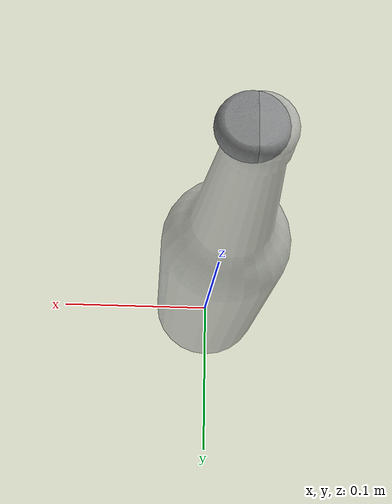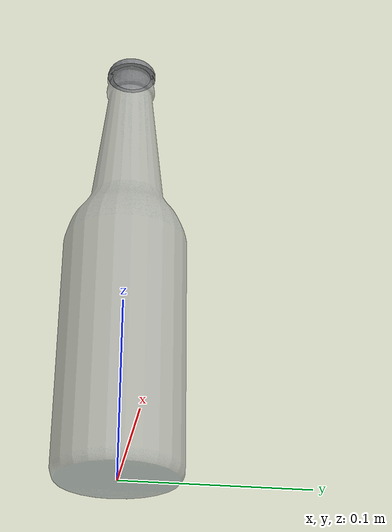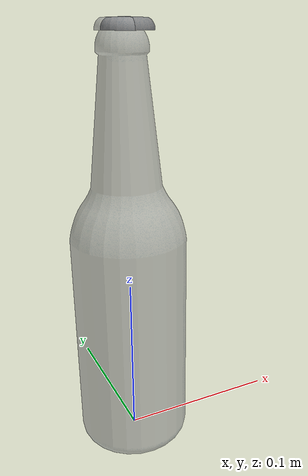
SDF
<?xml version='1.0'?>
<sdf version='1.6'>
  <model name='bottle_beer'>
    <link name='link_2'>

      <inertial>
          <pose frame=''>0 0 0.123373 0 -0 0</pose>
        <mass>0.5</mass>
        <inertia>
          <ixx>0.00268246596629</ixx>
          <ixy>0.0</ixy>
          <ixz>0.0</ixz>
          <iyy>0.00268246596629</iyy>
          <iyz>0.0</iyz>
          <izz>0.00029129955625</izz>
        </inertia>
      </inertial>

        <visual name='visual_1'>
          <geometry>
          <mesh>
            <uri>model://bottle_beer/meshes/beer_bottle.dae</uri>
            <scale>1 1 1</scale>
          </mesh>
        </geometry>
        <cast_shadows>1</cast_shadows>
        <transparency>0.4</transparency>
      </visual>
      <collision name='collision_1'>
        <laser_retro>0</laser_retro>
        <max_contacts>10</max_contacts>
        <geometry>
          <mesh>
            <uri>model://bottle_beer/meshes/beer_bottle.dae</uri>
            <scale>1 1 1</scale>
          </mesh>
        </geometry>
        </collision>

        <visual name='visual_2'>
         <geometry>
          <mesh>
            <uri>model://bottle_beer/meshes/cap.dae</uri>
            <scale>1 1 1</scale>
          </mesh>
        </geometry>

        <cast_shadows>1</cast_shadows>
        <transparency>0</transparency>
      </visual>
      <collision name='collision_2'>
        <laser_retro>0</laser_retro>
        <max_contacts>10</max_contacts>
       <geometry>
          <mesh>
            <uri>model://bottle_beer/meshes/cap.dae</uri>
            <scale>1 1 1</scale>
          </mesh>
        </geometry>
      </collision>

    </link>

    <static>0</static>
    <allow_auto_disable>1</allow_auto_disable>
  </model>
</sdf>
